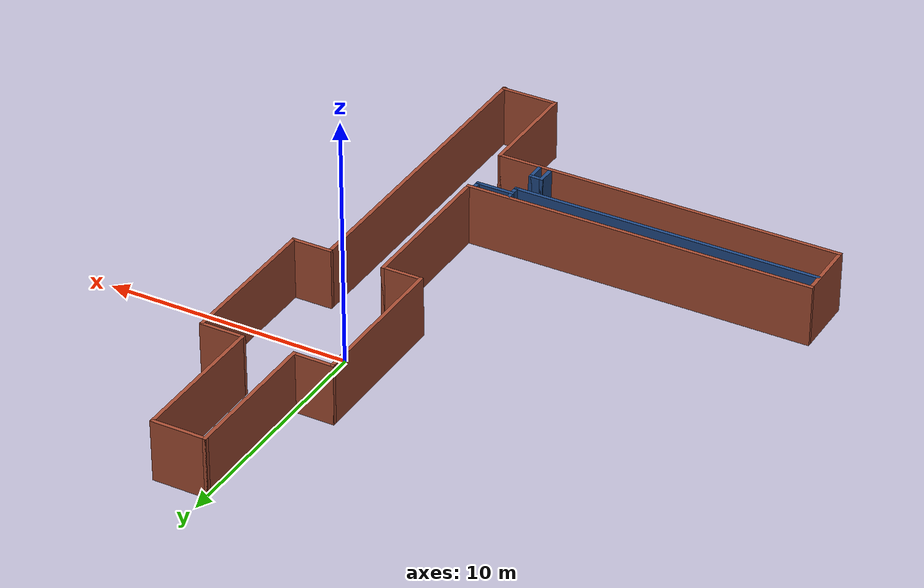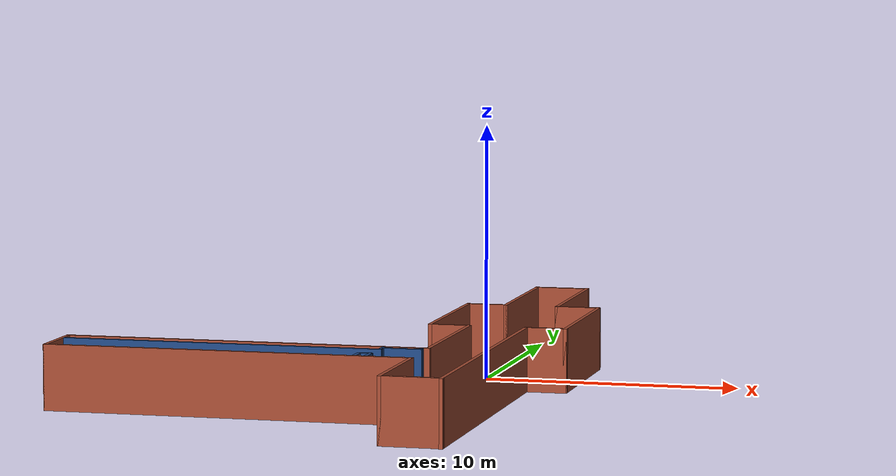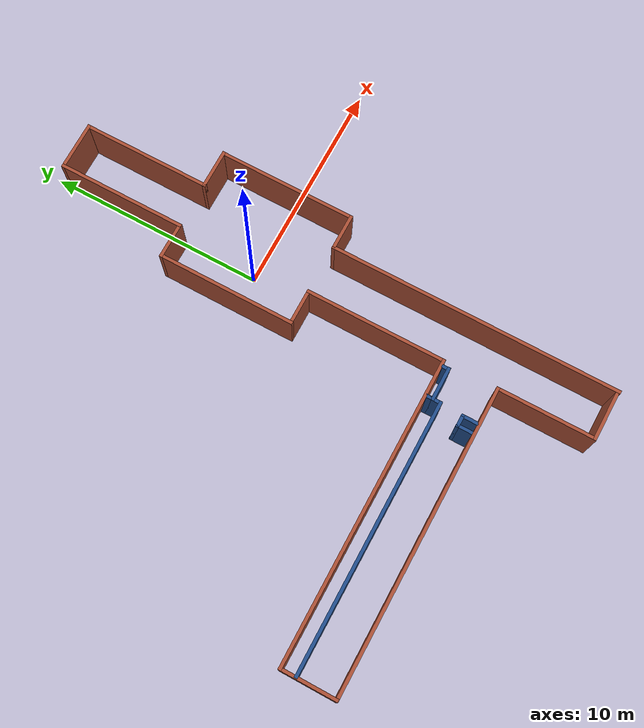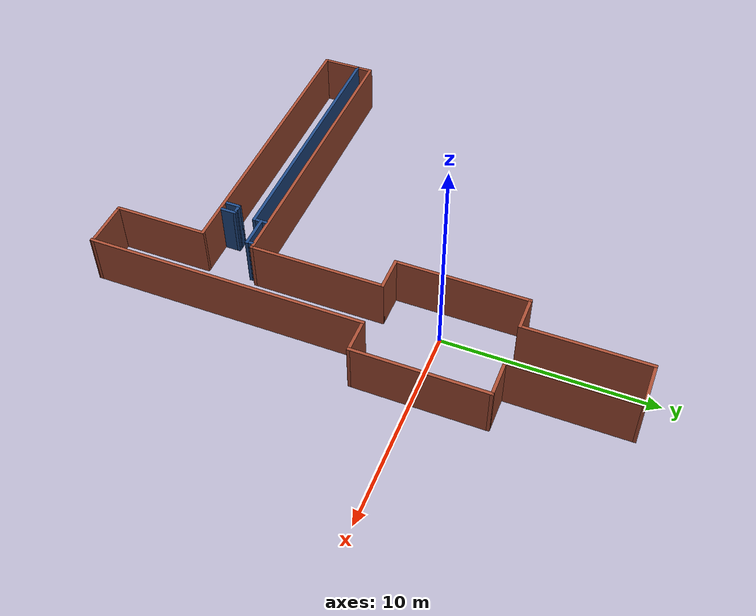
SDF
<?xml version='1.0'?>
<sdf version='1.7'>
  <model name='Cedri_Hall'>
    <pose>-5.16631 -3.383 0 0 -0 0</pose>
    <link name='Wall_15'>
      <collision name='Wall_15_Collision'>
        <geometry>
          <box>
            <size>5.95 0.15 2.5</size>
          </box>
        </geometry>
        <pose>0 0 1.25 0 -0 0</pose>
      </collision>
      <visual name='Wall_15_Visual'>
        <pose>0 0 1.25 0 -0 0</pose>
        <geometry>
          <box>
            <size>5.95 0.15 2.5</size>
          </box>
        </geometry>
        <material>
          <script>
            <uri>file://media/materials/scripts/gazebo.material</uri>
            <name>Gazebo/Bricks</name>
          </script>
          <ambient>1 1 1 1</ambient>
        </material>
        <meta>
          <layer>0</layer>
        </meta>
      </visual>
      <pose>5.12497 9.775 0 0 -0 1.5708</pose>
    </link>
    <link name='Wall_17'>
      <collision name='Wall_17_Collision'>
        <geometry>
          <box>
            <size>2.26245 0.15 2.5</size>
          </box>
        </geometry>
        <pose>0 0 1.25 0 -0 0</pose>
      </collision>
      <visual name='Wall_17_Visual'>
        <pose>0 0 1.25 0 -0 0</pose>
        <geometry>
          <box>
            <size>2.26245 0.15 2.5</size>
          </box>
        </geometry>
        <material>
          <script>
            <uri>file://media/materials/scripts/gazebo.material</uri>
            <name>Gazebo/Bricks</name>
          </script>
          <ambient>1 1 1 1</ambient>
        </material>
        <meta>
          <layer>0</layer>
        </meta>
      </visual>
      <pose>6.18115 12.675 0 0 -0 0</pose>
    </link>
    <link name='Wall_19'>
      <collision name='Wall_19_Collision'>
        <geometry>
          <box>
            <size>5.95 0.15 2.5</size>
          </box>
        </geometry>
        <pose>0 0 1.25 0 -0 0</pose>
      </collision>
      <visual name='Wall_19_Visual'>
        <pose>0 0 1.25 0 -0 0</pose>
        <geometry>
          <box>
            <size>5.95 0.15 2.5</size>
          </box>
        </geometry>
        <material>
          <script>
            <uri>file://media/materials/scripts/gazebo.material</uri>
            <name>Gazebo/Bricks</name>
          </script>
          <ambient>1 1 1 1</ambient>
        </material>
        <meta>
          <layer>0</layer>
        </meta>
      </visual>
      <pose>7.23733 9.775 0 0 -0 -1.5708</pose>
    </link>
    <link name='Wall_21'>
      <collision name='Wall_21_Collision'>
        <geometry>
          <box>
            <size>1.7 0.15 2.5</size>
          </box>
        </geometry>
        <pose>0 0 1.25 0 -0 0</pose>
      </collision>
      <visual name='Wall_21_Visual'>
        <pose>0 0 1.25 0 -0 0</pose>
        <geometry>
          <box>
            <size>1.7 0.15 2.5</size>
          </box>
        </geometry>
        <material>
          <script>
            <uri>file://media/materials/scripts/gazebo.material</uri>
            <name>Gazebo/Bricks</name>
          </script>
          <ambient>1 1 1 1</ambient>
        </material>
        <meta>
          <layer>0</layer>
        </meta>
      </visual>
      <pose>4.34997 6.875 0 0 -0 3.14159</pose>
    </link>
    <link name='Wall_23'>
      <collision name='Wall_23_Collision'>
        <geometry>
          <box>
            <size>1.83776 0.15 2.5</size>
          </box>
        </geometry>
        <pose>0 0 1.25 0 -0 0</pose>
      </collision>
      <visual name='Wall_23_Visual'>
        <pose>0 0 1.25 0 -0 0</pose>
        <geometry>
          <box>
            <size>1.83776 0.15 2.5</size>
          </box>
        </geometry>
        <material>
          <script>
            <uri>file://media/materials/scripts/gazebo.material</uri>
            <name>Gazebo/Bricks</name>
          </script>
          <ambient>1 1 1 1</ambient>
        </material>
        <meta>
          <layer>0</layer>
        </meta>
      </visual>
      <pose>8.08115 6.875 0 0 -0 0</pose>
    </link>
    <link name='Wall_25'>
      <collision name='Wall_25_Collision'>
        <geometry>
          <box>
            <size>6.4 0.15 2.5</size>
          </box>
        </geometry>
        <pose>0 0 1.25 0 -0 0</pose>
      </collision>
      <visual name='Wall_25_Visual'>
        <pose>0 0 1.25 0 -0 0</pose>
        <geometry>
          <box>
            <size>6.4 0.15 2.5</size>
          </box>
        </geometry>
        <material>
          <script>
            <uri>file://media/materials/scripts/gazebo.material</uri>
            <name>Gazebo/Bricks</name>
          </script>
          <ambient>1 1 1 1</ambient>
        </material>
        <meta>
          <layer>0</layer>
        </meta>
      </visual>
      <pose>3.57497 3.75 0 0 -0 -1.5708</pose>
    </link>
    <link name='Wall_27'>
      <collision name='Wall_27_Collision'>
        <geometry>
          <box>
            <size>1.7 0.15 2.5</size>
          </box>
        </geometry>
        <pose>0 0 1.25 0 -0 0</pose>
      </collision>
      <visual name='Wall_27_Visual'>
        <pose>0 0 1.25 0 -0 0</pose>
        <geometry>
          <box>
            <size>1.7 0.15 2.5</size>
          </box>
        </geometry>
        <material>
          <script>
            <uri>file://media/materials/scripts/gazebo.material</uri>
            <name>Gazebo/Bricks</name>
          </script>
          <ambient>1 1 1 1</ambient>
        </material>
        <meta>
          <layer>0</layer>
        </meta>
      </visual>
      <pose>4.34997 0.625001 0 0 -0 0</pose>
    </link>
    <link name='Wall_29'>
      <collision name='Wall_29_Collision'>
        <geometry>
          <box>
            <size>6.4 0.15 2.5</size>
          </box>
        </geometry>
        <pose>0 0 1.25 0 -0 0</pose>
      </collision>
      <visual name='Wall_29_Visual'>
        <pose>0 0 1.25 0 -0 0</pose>
        <geometry>
          <box>
            <size>6.4 0.15 2.5</size>
          </box>
        </geometry>
        <material>
          <script>
            <uri>file://media/materials/scripts/gazebo.material</uri>
            <name>Gazebo/Bricks</name>
          </script>
          <ambient>1 1 1 1</ambient>
        </material>
        <meta>
          <layer>0</layer>
        </meta>
      </visual>
      <pose>8.92497 3.75 0 0 -0 -1.5708</pose>
    </link>
    <link name='Wall_31'>
      <collision name='Wall_31_Collision'>
        <geometry>
          <box>
            <size>1.7 0.15 2.5</size>
          </box>
        </geometry>
        <pose>0 0 1.25 0 -0 0</pose>
      </collision>
      <visual name='Wall_31_Visual'>
        <pose>0 0 1.25 0 -0 0</pose>
        <geometry>
          <box>
            <size>1.7 0.15 2.5</size>
          </box>
        </geometry>
        <material>
          <script>
            <uri>file://media/materials/scripts/gazebo.material</uri>
            <name>Gazebo/Bricks</name>
          </script>
          <ambient>1 1 1 1</ambient>
        </material>
        <meta>
          <layer>0</layer>
        </meta>
      </visual>
      <pose>8.14997 0.625001 0 0 -0 3.14159</pose>
    </link>
    <link name='Wall_33'>
      <collision name='Wall_33_Collision'>
        <geometry>
          <box>
            <size>6.5 0.15 2.5</size>
          </box>
        </geometry>
        <pose>0 0 1.25 0 -0 0</pose>
      </collision>
      <visual name='Wall_33_Visual'>
        <pose>0 0 1.25 0 -0 0</pose>
        <geometry>
          <box>
            <size>6.5 0.15 2.5</size>
          </box>
        </geometry>
        <material>
          <script>
            <uri>file://media/materials/scripts/gazebo.material</uri>
            <name>Gazebo/Bricks</name>
          </script>
          <ambient>1 1 1 1</ambient>
        </material>
        <meta>
          <layer>0</layer>
        </meta>
      </visual>
      <pose>5.12497 -2.55 0 0 -0 -1.5708</pose>
    </link>
    <link name='Wall_35'>
      <collision name='Wall_35_Collision'>
        <geometry>
          <box>
            <size>13.45 0.15 2.5</size>
          </box>
        </geometry>
        <pose>0 0 1.25 0 -0 0</pose>
      </collision>
      <visual name='Wall_35_Visual'>
        <pose>0 0 1.25 0 -0 0</pose>
        <geometry>
          <box>
            <size>13.45 0.15 2.5</size>
          </box>
        </geometry>
        <material>
          <script>
            <uri>file://media/materials/scripts/gazebo.material</uri>
            <name>Gazebo/Bricks</name>
          </script>
          <ambient>1 1 1 1</ambient>
        </material>
        <meta>
          <layer>0</layer>
        </meta>
      </visual>
      <pose>7.37497 -6.025 0 0 -0 -1.5708</pose>
    </link>
    <link name='Wall_59'>
      <collision name='Wall_59_Collision'>
        <geometry>
          <box>
            <size>14.2 0.15 2.5</size>
          </box>
        </geometry>
        <pose>0 0 1.25 0 -0 0</pose>
      </collision>
      <visual name='Wall_59_Visual'>
        <pose>0 0 1.25 0 -0 0</pose>
        <geometry>
          <box>
            <size>14.2 0.15 2.5</size>
          </box>
        </geometry>
        <material>
          <script>
            <uri>file://media/materials/scripts/gazebo.material</uri>
            <name>Gazebo/Bricks</name>
          </script>
          <ambient>1 1 1 1</ambient>
        </material>
        <meta>
          <layer>0</layer>
        </meta>
      </visual>
      <pose>-1.90003 -5.725 0 0 -0 3.14159</pose>
    </link>
    <link name='Wall_62'>
      <collision name='Wall_62_Collision'>
        <geometry>
          <box>
            <size>2.65 0.15 2.5</size>
          </box>
        </geometry>
        <pose>0 0 1.25 0 -0 0</pose>
      </collision>
      <visual name='Wall_62_Visual'>
        <pose>0 0 1.25 0 -0 0</pose>
        <geometry>
          <box>
            <size>2.65 0.15 2.5</size>
          </box>
        </geometry>
        <material>
          <script>
            <uri>file://media/materials/scripts/gazebo.material</uri>
            <name>Gazebo/Bricks</name>
          </script>
          <ambient>1 1 1 1</ambient>
        </material>
        <meta>
          <layer>0</layer>
        </meta>
      </visual>
      <pose>-8.92503 -6.975 0 0 -0 -1.5708</pose>
    </link>
    <link name='Wall_64'>
      <collision name='Wall_64_Collision'>
        <geometry>
          <box>
            <size>14.2 0.15 2.5</size>
          </box>
        </geometry>
        <pose>0 0 1.25 0 -0 0</pose>
      </collision>
      <visual name='Wall_64_Visual'>
        <pose>0 0 1.25 0 -0 0</pose>
        <geometry>
          <box>
            <size>14.2 0.15 2.5</size>
          </box>
        </geometry>
        <material>
          <script>
            <uri>file://media/materials/scripts/gazebo.material</uri>
            <name>Gazebo/Bricks</name>
          </script>
          <ambient>1 1 1 1</ambient>
        </material>
        <meta>
          <layer>0</layer>
        </meta>
      </visual>
      <pose>-1.90003 -8.225 0 0 -0 0</pose>
    </link>
    <link name='Wall_66'>
      <collision name='Wall_66_Collision'>
        <geometry>
          <box>
            <size>4.55 0.15 2.5</size>
          </box>
        </geometry>
        <pose>0 0 1.25 0 -0 0</pose>
      </collision>
      <visual name='Wall_66_Visual'>
        <pose>0 0 1.25 0 -0 0</pose>
        <geometry>
          <box>
            <size>4.55 0.15 2.5</size>
          </box>
        </geometry>
        <material>
          <script>
            <uri>file://media/materials/scripts/gazebo.material</uri>
            <name>Gazebo/Bricks</name>
          </script>
          <ambient>1 1 1 1</ambient>
        </material>
        <meta>
          <layer>0</layer>
        </meta>
      </visual>
      <pose>5.12497 -10.425 0 0 -0 -1.5708</pose>
    </link>
    <link name='Wall_68'>
      <collision name='Wall_68_Collision'>
        <geometry>
          <box>
            <size>2.4 0.15 2.5</size>
          </box>
        </geometry>
        <pose>0 0 1.25 0 -0 0</pose>
      </collision>
      <visual name='Wall_68_Visual'>
        <pose>0 0 1.25 0 -0 0</pose>
        <geometry>
          <box>
            <size>2.4 0.15 2.5</size>
          </box>
        </geometry>
        <material>
          <script>
            <uri>file://media/materials/scripts/gazebo.material</uri>
            <name>Gazebo/Bricks</name>
          </script>
          <ambient>1 1 1 1</ambient>
        </material>
        <meta>
          <layer>0</layer>
        </meta>
      </visual>
      <pose>6.24997 -12.625 0 0 -0 0</pose>
    </link>
    <link name='Wall_76'>
      <collision name='Wall_76_Collision'>
        <geometry>
          <box>
            <size>1.59435 0.15 2.5</size>
          </box>
        </geometry>
        <pose>0 0 1.25 0 -0 0</pose>
      </collision>
      <visual name='Wall_76_Visual'>
        <pose>0 0 1.25 0 -0 0</pose>
        <geometry>
          <box>
            <size>1.59435 0.15 2.5</size>
          </box>
        </geometry>
        <material>
          <script>
            <uri>file://media/materials/scripts/gazebo.material</uri>
            <name>Gazebo/Grey</name>
          </script>
          <ambient>0.12549 0.290196 0.529412 1</ambient>
        </material>
        <meta>
          <layer>0</layer>
        </meta>
      </visual>
      <pose>4.18581 -6.0682 0 0 -0 3.14159</pose>
    </link>
    <link name='Wall_82'>
      <collision name='Wall_82_Collision'>
        <geometry>
          <box>
            <size>0.396511 0.15 2.5</size>
          </box>
        </geometry>
        <pose>0 0 1.25 0 -0 0</pose>
      </collision>
      <visual name='Wall_82_Visual'>
        <pose>0 0 1.25 0 -0 0</pose>
        <geometry>
          <box>
            <size>0.396511 0.15 2.5</size>
          </box>
        </geometry>
        <material>
          <script>
            <uri>file://media/materials/scripts/gazebo.material</uri>
            <name>Gazebo/Grey</name>
          </script>
          <ambient>0.12549 0.290196 0.529412 1</ambient>
        </material>
        <meta>
          <layer>0</layer>
        </meta>
      </visual>
      <pose>3.46363 -5.94494 0 0 -0 1.5708</pose>
    </link>
    <link name='Wall_84'>
      <collision name='Wall_84_Collision'>
        <geometry>
          <box>
            <size>0.376511 0.15 2.5</size>
          </box>
        </geometry>
        <pose>0 0 1.25 0 -0 0</pose>
      </collision>
      <visual name='Wall_84_Visual'>
        <pose>0 0 1.25 0 -0 0</pose>
        <geometry>
          <box>
            <size>0.376511 0.15 2.5</size>
          </box>
        </geometry>
        <material>
          <script>
            <uri>file://media/materials/scripts/gazebo.material</uri>
            <name>Gazebo/Grey</name>
          </script>
          <ambient>0.12549 0.290196 0.529412 1</ambient>
        </material>
        <meta>
          <layer>0</layer>
        </meta>
      </visual>
      <pose>4.8932 -5.95494 0 0 -0 1.5708</pose>
    </link>
    <link name='Wall_86'>
      <collision name='Wall_86_Collision'>
        <geometry>
          <box>
            <size>0.75 0.15 2.5</size>
          </box>
        </geometry>
        <pose>0 0 1.25 0 -0 0</pose>
      </collision>
      <visual name='Wall_86_Visual'>
        <pose>0 0 1.25 0 -0 0</pose>
        <geometry>
          <box>
            <size>0.75 0.15 2.5</size>
          </box>
        </geometry>
        <material>
          <script>
            <uri>file://media/materials/scripts/gazebo.material</uri>
            <name>Gazebo/Grey</name>
          </script>
          <ambient>0.12549 0.290196 0.529412 1</ambient>
        </material>
        <meta>
          <layer>0</layer>
        </meta>
      </visual>
      <pose>3.46363 -6.12169 0 0 -0 -1.5708</pose>
    </link>
    <link name='Wall_87'>
      <collision name='Wall_87_Collision'>
        <geometry>
          <box>
            <size>12.5 0.15 2.5</size>
          </box>
        </geometry>
        <pose>0 0 1.25 0 -0 0</pose>
      </collision>
      <visual name='Wall_87_Visual'>
        <pose>0 0 1.25 0 -0 0</pose>
        <geometry>
          <box>
            <size>12.5 0.15 2.5</size>
          </box>
        </geometry>
        <material>
          <script>
            <uri>file://media/materials/scripts/gazebo.material</uri>
            <name>Gazebo/Grey</name>
          </script>
          <ambient>0.12549 0.290196 0.529412 1</ambient>
        </material>
        <meta>
          <layer>0</layer>
        </meta>
      </visual>
      <pose>-2.71137 -6.42169 0 0 -0 3.14159</pose>
    </link>
    <link name='Wall_89'>
      <collision name='Wall_89_Collision'>
        <geometry>
          <box>
            <size>0.789326 0.15 2.5</size>
          </box>
        </geometry>
        <pose>0 0 1.25 0 -0 0</pose>
      </collision>
      <visual name='Wall_89_Visual'>
        <pose>0 0 1.25 0 -0 0</pose>
        <geometry>
          <box>
            <size>0.789326 0.15 2.5</size>
          </box>
        </geometry>
        <material>
          <script>
            <uri>file://media/materials/scripts/gazebo.material</uri>
            <name>Gazebo/Grey</name>
          </script>
          <ambient>0.12549 0.290196 0.529412 1</ambient>
        </material>
        <meta>
          <layer>0</layer>
        </meta>
      </visual>
      <pose>3.4049 -7.78608 0 0 -0 1.5708</pose>
    </link>
    <link name='Wall_92'>
      <collision name='Wall_92_Collision'>
        <geometry>
          <box>
            <size>0.25 0.15 2.5</size>
          </box>
        </geometry>
        <pose>0 0 1.25 0 -0 0</pose>
      </collision>
      <visual name='Wall_92_Visual'>
        <pose>0 0 1.25 0 -0 0</pose>
        <geometry>
          <box>
            <size>0.25 0.15 2.5</size>
          </box>
        </geometry>
        <material>
          <script>
            <uri>file://media/materials/scripts/gazebo.material</uri>
            <name>Gazebo/Grey</name>
          </script>
          <ambient>0.12549 0.290196 0.529412 1</ambient>
        </material>
        <meta>
          <layer>0</layer>
        </meta>
      </visual>
      <pose>3.3549 -7.46642 0 0 -0 3.14159</pose>
    </link>
    <link name='Wall_93'>
      <collision name='Wall_93_Collision'>
        <geometry>
          <box>
            <size>0.5 0.15 2.5</size>
          </box>
        </geometry>
        <pose>0 0 1.25 0 -0 0</pose>
      </collision>
      <visual name='Wall_93_Visual'>
        <pose>0 0 1.25 0 -0 0</pose>
        <geometry>
          <box>
            <size>0.5 0.15 2.5</size>
          </box>
        </geometry>
        <material>
          <script>
            <uri>file://media/materials/scripts/gazebo.material</uri>
            <name>Gazebo/Grey</name>
          </script>
          <ambient>0.12549 0.290196 0.529412 1</ambient>
        </material>
        <meta>
          <layer>0</layer>
        </meta>
      </visual>
      <pose>3.1299 -7.46642 0 0 -0 3.14159</pose>
    </link>
    <link name='Wall_94'>
      <collision name='Wall_94_Collision'>
        <geometry>
          <box>
            <size>0.75 0.15 2.5</size>
          </box>
        </geometry>
        <pose>0 0 1.25 0 -0 0</pose>
      </collision>
      <visual name='Wall_94_Visual'>
        <pose>0 0 1.25 0 -0 0</pose>
        <geometry>
          <box>
            <size>0.75 0.15 2.5</size>
          </box>
        </geometry>
        <material>
          <script>
            <uri>file://media/materials/scripts/gazebo.material</uri>
            <name>Gazebo/Grey</name>
          </script>
          <ambient>0.12549 0.290196 0.529412 1</ambient>
        </material>
        <meta>
          <layer>0</layer>
        </meta>
      </visual>
      <pose>2.9549 -7.76642 0 0 -0 -1.5708</pose>
    </link>
    <static>1</static>
  </model>
</sdf>
